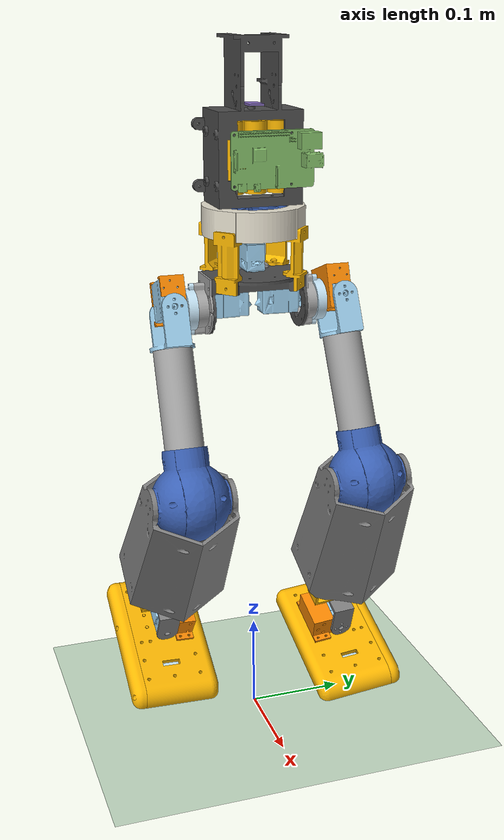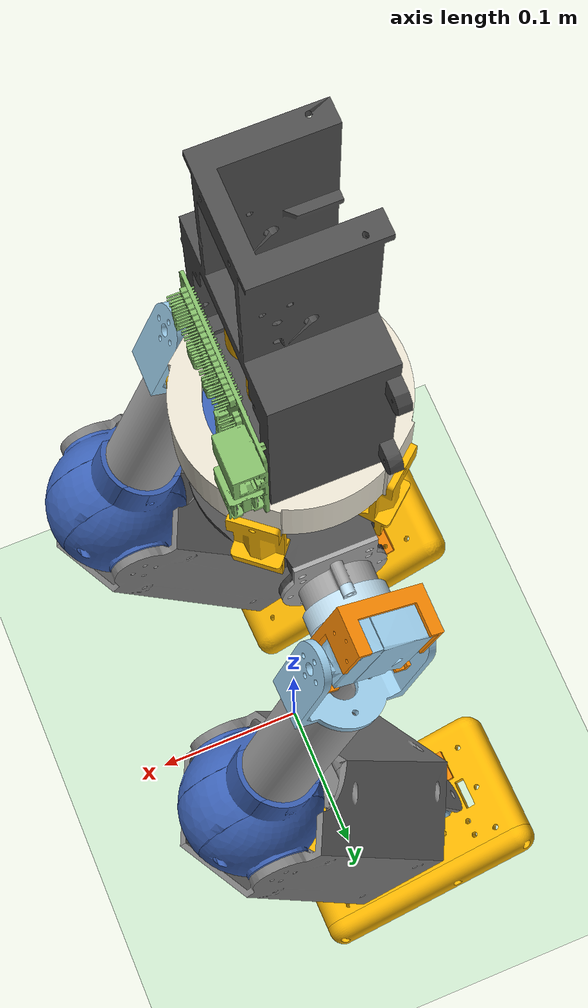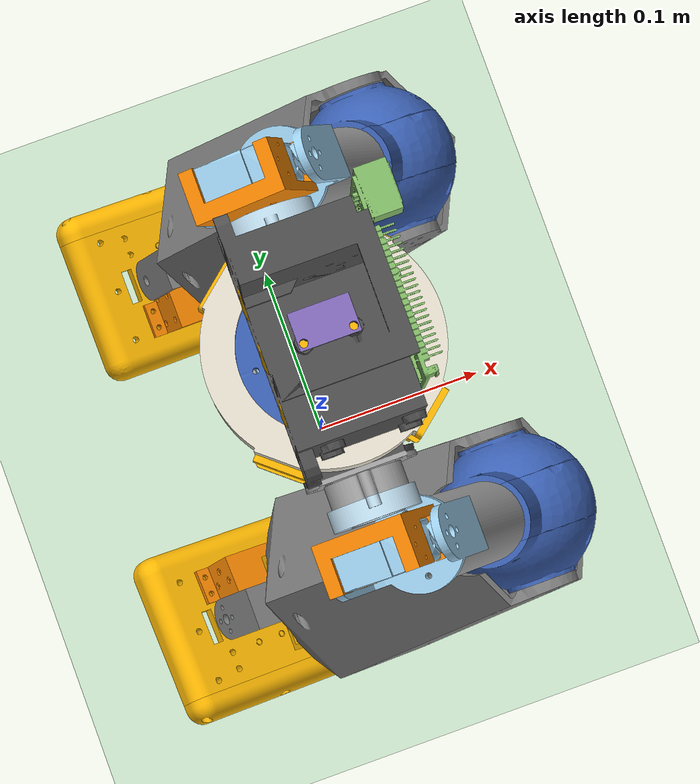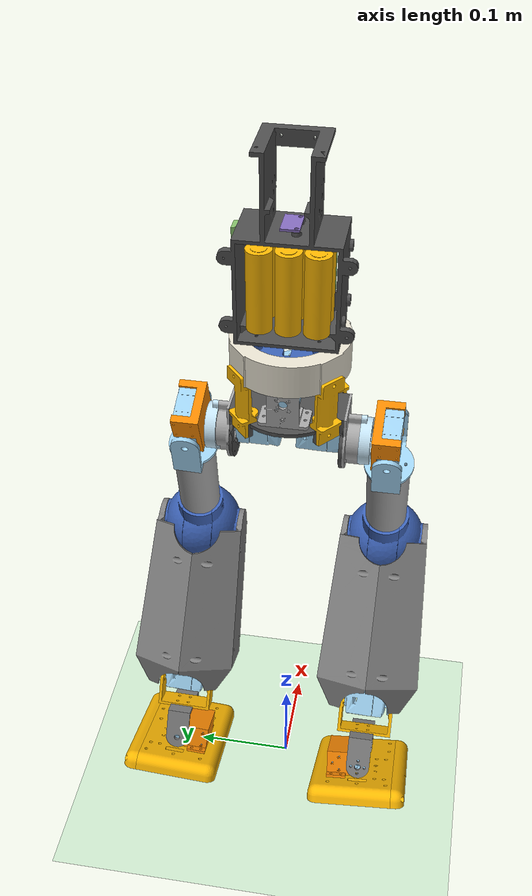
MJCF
<mujoco model="wildrobot">
  <option>
    <flag eulerdamp="disable" />
  </option>
  <include file="../common/scene.xml" />
  <include file="../common/mimic_sites.xml" />
  <compiler angle="radian" meshdir="assets" autolimits="true" />
  <default>
    <default class="wildrobot">
      <joint frictionloss="0.1" armature="0.005" />
      <position kp="50" dampratio="1" />
      <default class="visual">
        <geom type="mesh" contype="0" conaffinity="0" group="2" />
      </default>
      <default class="collision">
        <geom group="3" />
      </default>
    </default>
  </default>
  <sensor>
    <gyro site="chest_mimic" name="chest_gyro" />
    <accelerometer site="chest_mimic" name="chest_accelerometer" />
    <magnetometer site="chest_mimic" name="chest_magnetometer" />
    <velocimeter site="chest_mimic" name="chest_local_linvel" />
    <framequat objtype="site" objname="chest_mimic" name="chest_orientation" />
    <framezaxis objtype="site" objname="chest_mimic" name="chest_upvector" />
    <framexaxis objtype="site" objname="chest_mimic" name="chest_forwardvector" />
    <framelinvel objtype="site" objname="chest_mimic" name="chest_global_linvel" />
    <frameangvel objtype="site" objname="chest_mimic" name="chest_global_angvel" />
  </sensor>
  <default>
    <default class="lobotServo">
      <geom contype="0" conaffinity="0" />
      <joint damping="0.60" frictionloss="0.052" armature="0.028" />
      <position kp="17.8" kv="0.0" forcerange="-3.35 3.35" />
    </default>
    <default class="backlash">
      <joint damping="0.01" frictionloss="0" armature="0.01" limited="true" range="-0.008726646259971648 0.008726646259971648" />
    </default>
  </default>
  <worldbody>
    <body name="waist" pos="0 0 0.5" quat="1 0 0 0" childclass="wildrobot">
      <freejoint name="waist_freejoint" />
      <inertial pos="-0.00184822 -0.000203433 0.00597027" mass="0.439621" fullinertia="0.000998328 0.000698683 0.000703069 -9.31276e-08 1.31642e-05 5.17055e-07" />
      <geom type="mesh" class="visual" pos="-0.0597499 -0.0015488 -0.0272315" quat="0.706405 0.707807 0.000824746 -0.00082437" mesh="htd_45h_1circle" material="htd_45h_1circle_material" />
      <geom type="mesh" class="visual" pos="0.000373533 -0.000522794 0.125179" quat="0.34202 -0.000813125 0.00117541 -0.939692" mesh="waist_trunk_support" material="waist_trunk_support_material" />
      <geom type="mesh" class="visual" pos="-4.69683e-05 -0.000162684 4.02564e-07" quat="0.707106 -0.000240191 0.00140893 -0.707106" mesh="trunk_bottom" material="trunk_bottom_material" />
      <geom type="mesh" class="visual" pos="-0.00625136 -0.0598011 -0.00405253" quat="0.707105 0.00152514 0.00035641 0.707106" mesh="htd_45h_1circle" material="htd_45h_1circle_material" />
      <geom type="mesh" class="visual" pos="-4.69683e-05 -0.000162684 4.02564e-07" quat="0.707106 -0.000240191 0.00140893 -0.707106" mesh="trunk_servo_connect" material="trunk_servo_connect_material" />
      <geom type="mesh" class="visual" pos="-4.69685e-05 -0.000412684 -1.06452e-08" quat="0.707106 0.00140893 0.000240191 0.707106" mesh="hip_cover" material="hip_cover_material" />
      <geom type="mesh" class="visual" pos="0.000244976 -0.000369585 0.125179" quat="0.34202 -0.000813125 0.00117541 -0.939692" mesh="scroll_out" material="scroll_out_material" />
      <geom type="mesh" class="visual" pos="0.000373533 -0.000216376 0.125179" quat="0.939692 0.00037775 0.00137843 -0.342019" mesh="waist_trunk_support" material="waist_trunk_support_material" />
      <geom type="mesh" class="visual" pos="-4.69684e-05 -0.000262684 2.37281e-07" quat="0.707106 0.00140893 0.000240191 0.707106" mesh="hip_trunk_connect" material="hip_trunk_connect_material" />
      <geom type="mesh" class="visual" pos="0.000116418 -0.000522794 0.12518" quat="0.342019 0.00137843 -0.00037775 0.939692" mesh="waist_trunk_support" material="waist_trunk_support_material" />
      <geom type="mesh" class="visual" pos="0.000116419 -0.000216377 0.12518" quat="0.939692 0.00117541 0.000813125 0.34202" mesh="waist_trunk_support" material="waist_trunk_support_material" />
      <geom type="mesh" class="visual" pos="-4.6968e-05 8.73158e-05 8.15774e-07" quat="0.707106 -0.000240191 0.00140893 -0.707106" mesh="hip_cover" material="hip_cover_material" />
      <geom type="mesh" class="visual" pos="0.0595283 0.00131391 -0.0275049" quat="0.000825017 -0.000824099 -0.706638 -0.707574" mesh="htd_45h_1circle" material="htd_45h_1circle_material" />
      <geom type="mesh" class="visual" pos="-4.69681e-05 -6.2684e-05 5.67848e-07" quat="0.707106 -0.000240191 0.00140893 -0.707106" mesh="hip_trunk_connect" material="hip_trunk_connect_material" />
      <site group="3" name="pelvis_mimic" pos="-4.69683e-05 -0.000162684 4.02564e-07" quat="0.999999 0.00082642 0.0011661 4.57714e-07" />
      <body name="chassis" pos="8.52189e-05 -0.000200605 0.0482002" quat="0.000704462 -0.707106 -0.707107 0.000120095">
        <joint axis="0 0 1" name="waist" type="hinge" range="-1.5707977403908642 1.570794913198929" class="lobotServo" />
        <inertial pos="0.00235226 0.00416672 -0.0682563" mass="0.841214" fullinertia="0.00126289 0.00149567 0.000913668 -0.000107674 2.45804e-05 3.30803e-05" />
        <geom type="mesh" class="visual" pos="0.0233089 -0.211191 -0.0331" quat="0.707107 0.707107 4.99782e-07 4.99782e-07" mesh="cell" material="cell_material" />
        <geom type="mesh" class="visual" pos="0.00985853 0.0311486 -0.068" quat="1 2.01641e-16 -1.11022e-16 7.06798e-07" mesh="rp_assemble" material="rp_assemble_material" />
        <geom type="mesh" class="visual" pos="-0.000141454 0.0233586 -0.068" quat="5.37792e-19 -7.06798e-07 1 1.93595e-16" mesh="batterybox" material="batterybox_material" />
        <geom type="mesh" class="visual" pos="0.0951086 -0.000141287 -0.119" quat="7.06798e-07 7.43936e-17 1.11022e-16 -1" mesh="bno085" material="bno085_material" />
        <geom type="mesh" class="visual" pos="-0.000141089 -0.234991 -0.0331" quat="0.707107 0.707107 4.99782e-07 4.99782e-07" mesh="cell" material="cell_material" />
        <geom type="mesh" class="visual" pos="-0.0235911 -0.234991 -0.0331" quat="0.707107 0.707107 4.99782e-07 4.99782e-07" mesh="cell" material="cell_material" />
        <geom type="mesh" class="visual" pos="-0.000141421 -0.000141422 -0.0763796" quat="1.93487e-16 -1 -7.06798e-07 -9.7952e-17" mesh="waist_platform" material="waist_platform_material" />
        <geom type="mesh" class="visual" pos="-0.000141421 -0.000141422 -0.0763796" quat="1.93487e-16 -1 -7.06798e-07 -9.7952e-17" mesh="waist_platform_2" material="waist_platform_2_material" />
        <geom type="mesh" class="visual" pos="0.0233089 -0.234991 -0.0331" quat="0.707107 0.707107 4.99782e-07 4.99782e-07" mesh="cell" material="cell_material" />
        <geom type="mesh" class="visual" pos="-0.0235911 -0.211191 -0.0331" quat="0.707107 0.707107 4.99782e-07 4.99782e-07" mesh="cell" material="cell_material" />
        <geom type="mesh" class="visual" pos="-0.000141123 -0.211191 -0.0331" quat="0.707107 0.707107 4.99782e-07 4.99782e-07" mesh="cell" material="cell_material" />
        <site group="3" name="chest_imu" pos="0.00011984 -0.000141421 -0.119" quat="4.3029e-17 0.707106 0.707107 3.3975e-16" />
        <site group="3" name="chest_mimic" pos="0.000156596 -0.000141421 -0.114" quat="9.63927e-18 -0.707106 -0.707107 -2.23102e-16" />
      </body>
      <body name="left_hip" pos="-0.000172708 0.0534928 -0.0334943" quat="0.000532121 0.00111617 -0.708103 0.706109">
        <joint axis="0 0 1" name="left_waist_hip" type="hinge" range="-1.4057639174040384 1.2122299605874558" class="lobotServo" />
        <inertial pos="0.000421698 -0.00943008 -0.0331054" mass="0.0849728" fullinertia="1.96738e-05 1.96137e-05 2.44282e-05 5.43172e-07 -2.53773e-07 -1.67658e-06" />
        <geom type="mesh" class="visual" pos="0.0116942 -0.0314888 0.0566" quat="0.581148 0.402824 0.581148 -0.402824" mesh="hip_servo_hook_left" material="hip_servo_hook_left_material" />
        <geom type="mesh" class="visual" pos="0.0259011 0.00289219 0.0231393" quat="0.12598 0.695794 0.12598 -0.695794" mesh="htd_45h_1circle" material="htd_45h_1circle_material" />
        <site group="3" name="left_hip_mimic" pos="0.000436 5.66837e-05 -0.0364505" quat="0.123665 -0.123665 0.696209 -0.696209" />
        <body name="upper_leg" pos="-0.0251308 -0.00959592 -0.0365475" quat="0.695987 -0.126448 0.695412 0.126552">
          <joint axis="0 0 1" name="left_hip" type="hinge" range="-0.9892687304855692 0.40699467110989435" class="lobotServo" />
          <inertial pos="0.00818352 0.159105 0.0267034" mass="0.236565" fullinertia="0.000985322 0.000127633 0.000979617 -3.99772e-05 7.18768e-08 1.07297e-06" />
          <geom type="mesh" class="visual" pos="-0.0948406 0.00550016 0.0267" quat="0.70681 0.70681 -0.0204781 -0.0204781" mesh="up_leg_servo_connect" material="up_leg_servo_connect_material" />
          <geom type="mesh" class="visual" pos="0.0100944 0.17406 0.1872" quat="0.48531 0.51427 0.48531 -0.51427" mesh="icm45686" material="icm45686_material" />
          <geom type="mesh" class="visual" pos="-0.0946641 0.00508925 0.0266985" quat="0.706808 0.706812 -0.020481 -0.0204752" mesh="knee_ball_left" material="knee_ball_left_material" />
          <geom type="mesh" class="visual" pos="-0.0948522 0.0053005 0.0267" quat="0.70681 0.70681 -0.0204781 -0.0204781" mesh="knee_ball_mid" material="knee_ball_mid_material" />
          <geom type="mesh" class="visual" pos="-0.0948406 0.00550016 0.0267" quat="0.70681 0.70681 -0.0204781 -0.0204781" mesh="up_leg" material="up_leg_material" />
          <geom type="mesh" class="visual" pos="0.0368187 0.196827 -0.0329432" quat="0.70653 -0.0199567 -0.70712 -0.0199429" mesh="htd_45h_1circle" material="htd_45h_1circle_material" />
          <geom type="mesh" class="visual" pos="-0.0950635 0.00511245 0.0268019" quat="0.707069 0.706552 -0.0204937 -0.0204624" mesh="knee_ball_right" material="knee_ball_right_material" />
          <site group="3" name="left_knee_imu" pos="0.0100365 0.173061 0.0264651" quat="0.48531 0.51427 0.48531 -0.51427" />
          <site group="3" name="left_knee_mimic" pos="0.0111365 0.19203 0.0267" quat="0.48531 0.51427 0.48531 -0.51427" />
          <body name="lower_leg" pos="-0.0156685 0.193584 0.0267" quat="0.276907 -0.633507 0.31411 -0.650635">
            <joint axis="0 0 1" name="left_knee" type="hinge" range="-0.862673177600354 0.7081231491945426" class="lobotServo" />
            <inertial pos="-0.000521354 -0.101401 0.0270617" mass="0.380663" fullinertia="0.00177714 0.000669988 0.00168908 1.88914e-05 3.0835e-08 -3.5834e-05" />
            <geom type="mesh" class="visual" pos="-1.97065e-15 0.192752 -0.0677579" quat="0.5 -0.5 -0.5 -0.5" mesh="low_leg_right" material="low_leg_right_material" />
            <geom type="mesh" class="visual" pos="-6.10623e-16 0.192752 -0.0677579" quat="0.5 -0.5 -0.5 -0.5" mesh="low_leg_left" material="low_leg_left_material" />
            <geom type="mesh" class="visual" pos="0.0596393 -0.173769 0.0526109" quat="1.31006e-14 -1.4616e-15 -1 0.000164358" mesh="htd_45h_1circle" material="htd_45h_1circle_material" />
            <body name="left_ankle" pos="-4.74705e-05 -0.179984 0.000442075" quat="0.998721 0.000561418 0.000442155 -0.05055">
              <joint axis="0 0 1" name="left_ankle" type="hinge" range="-0.4224551643931683 0.6247423868034293" class="lobotServo" />
              <inertial pos="-0.000778386 -0.0291765 0.0259275" mass="0.0230191" fullinertia="1.34186e-05 1.32703e-05 1.41853e-05 -1.80568e-07 1.56329e-08 2.24395e-07" />
              <geom type="mesh" class="visual" pos="5.55112e-17 -0.0722 0.0268" quat="0.5 -0.5 -0.5 -0.5" mesh="servo_bracket_btm" material="servo_bracket_btm_material" />
              <geom type="mesh" class="visual" pos="-2.77556e-17 -0.0732 0.0268" quat="0.5 -0.5 -0.5 -0.5" mesh="servo_bracket_top" material="servo_bracket_top_material" />
              <body name="left_foot" pos="-0.0268 -0.0594 0.0268" quat="0.509468 0.490349 0.509468 0.490349">
                <joint axis="0 0 1" name="left_foot" type="hinge" range="-0.3108265245577723 0.38730517623995947" class="lobotServo" />
                <inertial pos="-0.0183724 -0.00183883 0.00908575" mass="0.413618" fullinertia="0.00096407 0.00073874 0.0003209 1.74031e-05 -2.95872e-05 1.47775e-05" />
                <geom type="mesh" class="visual" pos="-0.0128254 0.000185294 0.0255108" quat="0.499502 0.500498 0.499915 0.500085" mesh="btm_servo_support" material="btm_servo_support_material" />
                <geom type="mesh" class="visual" pos="-0.0596436 -0.0062757 0.0510108" quat="0.00074741 -1 3.08837e-07 0.00041321" mesh="htd_45h_1circle" material="htd_45h_1circle_material" />
                <geom type="mesh" class="visual" pos="-0.0125253 0.0011852 0.0255946" quat="0.499502 0.500498 0.499915 0.500085" mesh="foot_btm_back" material="foot_btm_back_material" />
                <geom type="mesh" class="collision" pos="-0.0125253 0.0011852 0.0255946" quat="0.499502 0.500498 0.499915 0.500085" mesh="foot_btm_back" material="foot_btm_back_material" name="left_foot_btm_back" />
                <geom type="mesh" class="visual" pos="-0.0128254 0.000185294 0.0255108" quat="0.499502 0.500498 0.499915 0.500085" mesh="foot_side" material="foot_side_material" />
                <geom type="mesh" class="visual" pos="-0.0128254 0.000185294 0.0255108" quat="0.499502 0.500498 0.499915 0.500085" mesh="foot_main" material="foot_main_material" />
                <geom type="mesh" class="visual" pos="-0.0125255 0.00118539 0.0254289" quat="0.499502 0.500498 0.499915 0.500085" mesh="foot_btm_front" material="foot_btm_front_material" />
                <geom type="mesh" class="collision" pos="-0.0125255 0.00118539 0.0254289" quat="0.499502 0.500498 0.499915 0.500085" mesh="foot_btm_front" material="foot_btm_front_material" name="left_foot_btm_front" />
                <site group="3" name="left_foot_mimic" pos="-0.0294391 -0.00926314 0.00899012" quat="0.706814 0.00041245 0.707399 0.000412109" />
              </body>
            </body>
          </body>
        </body>
      </body>
      <body name="right_hip" pos="-7.78758e-05 -0.0537071 -0.0336717" quat="0.707279 -0.706934 0.000531499 0.00111747">
        <joint axis="0 0 1" name="right_waist_hip" type="hinge" range="-1.1818030968488529 1.4361907811426413" class="lobotServo" />
        <inertial pos="-0.000884833 -0.00934056 -0.0331404" mass="0.0849728" fullinertia="1.96551e-05 1.96681e-05 2.44237e-05 -5.50614e-07 1.68918e-07 -1.67603e-06" />
        <geom type="mesh" class="visual" pos="-0.0259862 0.00375467 -0.0961393" quat="0.13655 0.693797 -0.13655 0.693797" mesh="htd_45h_1circle" material="htd_45h_1circle_material" />
        <geom type="mesh" class="visual" pos="-0.0128318 -0.0310426 0.0566" quat="0.587209 0.393936 -0.587209 0.393936" mesh="hip_servo_hook_right" material="hip_servo_hook_right_material" />
        <site group="3" name="right_hip_mimic" pos="-0.000619132 0.000145773 -0.0365495" quat="0.694247 0.694247 -0.134242 -0.134242" />
        <body name="upper_leg_2" pos="0.0246422 -0.0102802 -0.0364525" quat="0.693408 -0.137126 -0.693981 -0.137012">
          <joint axis="0 0 1" name="right_hip" type="hinge" range="-0.34906585039886234 1.0471975511966012" class="lobotServo" />
          <inertial pos="-0.00104181 0.159312 0.0267034" mass="0.236565" fullinertia="0.000987068 0.000125887 0.000979617 9.86461e-06 9.63535e-09 1.07533e-06" />
          <geom type="mesh" class="visual" pos="-0.095 2.42861e-17 0.0267" quat="0.707107 0.707107 -6.66134e-16 6.12613e-17" mesh="up_leg_servo_connect" material="up_leg_servo_connect_material" />
          <geom type="mesh" class="visual" pos="1.52656e-16 0.174352 0.1872" quat="0.5 0.5 0.5 -0.5" mesh="icm45686" material="icm45686_material" />
          <geom type="mesh" class="visual" pos="-0.0948 -0.0004 0.0266985" quat="0.707105 0.707109 -2.84803e-06 2.84595e-06" mesh="knee_ball_left" material="knee_ball_left_material" />
          <geom type="mesh" class="visual" pos="-0.095 -0.0002 0.0267" quat="0.707107 0.707107 -7.77156e-16 6.55782e-17" mesh="knee_ball_mid" material="knee_ball_mid_material" />
          <geom type="mesh" class="visual" pos="-0.095 2.77556e-17 0.0267" quat="0.707107 0.707107 -7.77156e-16 7.62971e-17" mesh="up_leg" material="up_leg_material" />
          <geom type="mesh" class="visual" pos="0.0253613 0.198628 -0.0329432" quat="0.706811 0.000530114 -0.707402 0.000526879" mesh="htd_45h_1circle" material="htd_45h_1circle_material" />
          <geom type="mesh" class="visual" pos="-0.0952 -0.000399963 0.0268019" quat="0.707365 0.706849 -2.31378e-05 2.31379e-05" mesh="knee_ball_right" material="knee_ball_right_material" />
          <site group="3" name="right_knee_imu" pos="4.16334e-17 0.173352 0.0264651" quat="0.5 0.5 0.5 -0.5" />
          <site group="3" name="right_knee_mimic" pos="5.41234e-16 0.192352 0.0267" quat="0.5 0.5 0.5 -0.5" />
          <body name="lower_leg_2" pos="-0.02685 0.192352 0.0267" quat="0.345975 -0.616684 0.345972 -0.616689">
            <joint axis="0 0 1" name="right_knee" type="hinge" range="-1.0225247445278098 0.5482715822670867" class="lobotServo" />
            <inertial pos="-0.000521354 -0.101401 0.0270617" mass="0.380663" fullinertia="0.00177714 0.000669988 0.00168908 1.88914e-05 3.0835e-08 -3.5834e-05" />
            <geom type="mesh" class="visual" pos="-2.19269e-15 0.192752 -0.0677579" quat="0.5 -0.5 -0.5 -0.5" mesh="low_leg_right" material="low_leg_right_material" />
            <geom type="mesh" class="visual" pos="-1.94289e-16 0.192752 -0.0677579" quat="0.5 -0.5 -0.5 -0.5" mesh="low_leg_left" material="low_leg_left_material" />
            <geom type="mesh" class="visual" pos="0.0596393 -0.173769 0.0526109" quat="1.06581e-14 9.03675e-18 -1 0.000164358" mesh="htd_45h_1circle" material="htd_45h_1circle_material" />
            <body name="right_ankle" pos="-4.74705e-05 -0.179984 0.000442075" quat="2.40923e-07 -0.00041321 0.000583051 -1">
              <joint axis="0 0 1" name="right_ankle" type="hinge" range="-0.4286538344687406 0.618543716727857" class="lobotServo" />
              <inertial pos="0.00199112 0.0291189 0.0259275" mass="0.0230191" fullinertia="1.34514e-05 1.32375e-05 1.41853e-05 1.63321e-07 -5.71065e-09 -2.24867e-07" />
              <geom type="mesh" class="visual" pos="0.00684473 0.0718748 0.0268" quat="0.475709 0.523164 0.475709 -0.523164" mesh="servo_bracket_btm" material="servo_bracket_btm_material" />
              <geom type="mesh" class="visual" pos="0.00693953 0.0728703 0.0268" quat="0.523164 0.475709 -0.523164 0.475709" mesh="servo_bracket_top" material="servo_bracket_top_material" />
              <body name="right_foot" pos="-0.021048 0.0616732 0.0268" quat="0.493379 0.457479 -0.539178 -0.506534">
                <joint axis="0 0 1" name="right_foot" type="hinge" range="-0.41770057426382823 0.28043112653390356" class="lobotServo" />
                <inertial pos="-0.0182605 0.00187575 -0.0419443" mass="0.413618" fullinertia="0.000978456 0.000752203 0.000319832 -1.71895e-05 -3.90028e-05 -1.62365e-05" />
                <geom type="mesh" class="visual" pos="-0.0128256 0.159815 -0.0265243" quat="0.499915 0.500085 0.499502 0.500498" mesh="foot_main_right" material="foot_main_right_material" />
                <geom type="mesh" class="visual" pos="-0.0125255 -0.00118539 -0.0266289" quat="0.499915 0.500085 0.499502 0.500498" mesh="foot_btm_front" material="foot_btm_front_material" />
                <geom type="mesh" class="collision" pos="-0.0125255 -0.00118539 -0.0266289" quat="0.499915 0.500085 0.499502 0.500498" mesh="foot_btm_front" material="foot_btm_front_material" name="right_foot_btm_front" />
                <geom type="mesh" class="visual" pos="-0.0128256 0.159815 -0.0265243" quat="0.499915 0.500085 0.499502 0.500498" mesh="foot_side_right" material="foot_side_right_material" />
                <geom type="mesh" class="visual" pos="-0.0128254 -0.000185294 -0.0267108" quat="0.500498 -0.499502 0.500085 -0.499915" mesh="btm_servo_support" material="btm_servo_support_material" />
                <geom type="mesh" class="visual" pos="-0.0105255 -0.00118539 -0.0266273" quat="0.499915 0.500085 0.499502 0.500498" mesh="foot_btm_back" material="foot_btm_back_material" />
                <geom type="mesh" class="collision" pos="-0.0105255 -0.00118539 -0.0266273" quat="0.499915 0.500085 0.499502 0.500498" mesh="foot_btm_back" material="foot_btm_back_material" name="right_foot_btm_back" />
                <geom type="mesh" class="visual" pos="-0.0596436 0.0062757 -0.0522108" quat="1 0.00074741 -0.00041321 3.08837e-07" mesh="htd_45h_1circle" material="htd_45h_1circle_material" />
                <site group="3" name="right_foot_mimic" pos="-0.0294117 0.00930168 -0.0432369" quat="0.707399 0.000412109 0.706814 0.00041245" />
              </body>
            </body>
          </body>
        </body>
      </body>
    </body>
  </worldbody>
  <asset>
    <mesh file="foot_main.stl" />
    <mesh file="foot_btm_front.stl" />
    <mesh file="batterybox.stl" />
    <mesh file="knee_ball_left.stl" />
    <mesh file="knee_ball_mid.stl" />
    <mesh file="hip_trunk_connect.stl" />
    <mesh file="servo_bracket_top.stl" />
    <mesh file="waist_trunk_support.stl" />
    <mesh file="low_leg_right.stl" />
    <mesh file="waist_platform.stl" />
    <mesh file="scroll_out.stl" />
    <mesh file="foot_side.stl" />
    <mesh file="knee_ball_right.stl" />
    <mesh file="trunk_bottom.stl" />
    <mesh file="hip_cover.stl" />
    <mesh file="servo_bracket_btm.stl" />
    <mesh file="btm_servo_support.stl" />
    <mesh file="cell.stl" />
    <mesh file="icm45686.stl" />
    <mesh file="hip_servo_hook_right.stl" />
    <mesh file="foot_main_right.stl" />
    <mesh file="foot_side_right.stl" />
    <mesh file="trunk_servo_connect.stl" />
    <mesh file="waist_platform_2.stl" />
    <mesh file="foot_btm_back.stl" />
    <mesh file="bno085.stl" />
    <mesh file="hip_servo_hook_left.stl" />
    <mesh file="htd_45h_1circle.stl" />
    <mesh file="up_leg_servo_connect.stl" />
    <mesh file="low_leg_left.stl" />
    <mesh file="rp_assemble.stl" />
    <mesh file="up_leg.stl" />
    <material name="htd_45h_1circle_material" rgba="0.615686 0.811765 0.929412 1" />
    <material name="waist_trunk_support_material" rgba="0.980392 0.713725 0.00392157 1" />
    <material name="trunk_bottom_material" rgba="0.301961 0.301961 0.301961 1" />
    <material name="trunk_servo_connect_material" rgba="0.647059 0.647059 0.647059 1" />
    <material name="hip_cover_material" rgba="0.768627 0.886275 0.952941 1" />
    <material name="scroll_out_material" rgba="0.901961 0.878431 0.811765 1" />
    <material name="hip_trunk_connect_material" rgba="0.647059 0.647059 0.647059 1" />
    <material name="cell_material" rgba="0.980392 0.713725 0.00392157 1" />
    <material name="rp_assemble_material" rgba="0.513725 0.737255 0.407843 1" />
    <material name="batterybox_material" rgba="0.301961 0.301961 0.301961 1" />
    <material name="bno085_material" rgba="0.513725 0.415686 0.733333 1" />
    <material name="waist_platform_material" rgba="0.231373 0.380392 0.705882 1" />
    <material name="waist_platform_2_material" rgba="0.231373 0.380392 0.705882 1" />
    <material name="hip_servo_hook_left_material" rgba="0.972549 0.529412 0.00392157 1" />
    <material name="up_leg_servo_connect_material" rgba="0.615686 0.811765 0.929412 1" />
    <material name="icm45686_material" rgba="0.301961 0.301961 0.301961 1" />
    <material name="knee_ball_left_material" rgba="0.231373 0.380392 0.705882 1" />
    <material name="knee_ball_mid_material" rgba="0.231373 0.380392 0.705882 1" />
    <material name="up_leg_material" rgba="0.647059 0.647059 0.647059 1" />
    <material name="knee_ball_right_material" rgba="0.231373 0.380392 0.705882 1" />
    <material name="low_leg_right_material" rgba="0.498039 0.498039 0.498039 1" />
    <material name="low_leg_left_material" rgba="0.498039 0.498039 0.498039 1" />
    <material name="servo_bracket_btm_material" rgba="0.498039 0.498039 0.498039 1" />
    <material name="servo_bracket_top_material" rgba="0.980392 0.713725 0.00392157 1" />
    <material name="btm_servo_support_material" rgba="0.972549 0.529412 0.00392157 1" />
    <material name="foot_btm_back_material" rgba="0.768627 0.886275 0.952941 1" />
    <material name="foot_side_material" rgba="0.980392 0.713725 0.00392157 1" />
    <material name="foot_main_material" rgba="0.980392 0.713725 0.00392157 1" />
    <material name="foot_btm_front_material" rgba="0.231373 0.380392 0.705882 1" />
    <material name="hip_servo_hook_right_material" rgba="0.972549 0.529412 0.00392157 1" />
    <material name="foot_main_right_material" rgba="0.980392 0.713725 0.00392157 1" />
    <material name="foot_side_right_material" rgba="0.980392 0.713725 0.00392157 1" />
  </asset>
  <actuator>
    <position class="lobotServo" name="waist" joint="waist" inheritrange="1" />
    <position class="lobotServo" name="left_waist_hip" joint="left_waist_hip" inheritrange="1" />
    <position class="lobotServo" name="left_hip" joint="left_hip" inheritrange="1" />
    <position class="lobotServo" name="left_knee" joint="left_knee" inheritrange="1" />
    <position class="lobotServo" name="left_ankle" joint="left_ankle" inheritrange="1" />
    <position class="lobotServo" name="left_foot" joint="left_foot" inheritrange="1" />
    <position class="lobotServo" name="right_waist_hip" joint="right_waist_hip" inheritrange="1" />
    <position class="lobotServo" name="right_hip" joint="right_hip" inheritrange="1" />
    <position class="lobotServo" name="right_knee" joint="right_knee" inheritrange="1" />
    <position class="lobotServo" name="right_ankle" joint="right_ankle" inheritrange="1" />
    <position class="lobotServo" name="right_foot" joint="right_foot" inheritrange="1" />
  </actuator>
  <equality />
</mujoco>

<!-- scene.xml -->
git s<mujoco model="scene">

  <visual>
    <headlight diffuse="0.6 0.6 0.6" ambient="0.3 0.3 0.3" specular="0 0 0"/>
    <rgba haze="0.15 0.25 0.35 1"/>
    <global azimuth="-130" elevation="-20"/>
  </visual>

   <asset>
       <texture builtin="gradient" height="100" rgb1=".4 .5 .6" rgb2="0 0 0" type="skybox" width="100"/>
       <texture name="texplane" type="2d" builtin="checker" rgb1=".2 .3 .4" rgb2=".1 0.15 0.2" width="100" height="100"/>
       <material name="MatPlane" reflectance="0.5" texture="texplane" texrepeat="1 1" texuniform="true"/>
   </asset>

    <worldbody>
        <geom name="floor" friction="1 .1 .1" pos="0 0 0" size="0 0 0.125" type="plane" material="MatPlane" condim="3" conaffinity="1" contype="1" group="2" rgba="0.8 0.9 0.8 1"/>
        <light cutoff="1000" diffuse="1 1 1" dir="-0 0 -1.3" directional="true" exponent="1" pos="0 0 1.3" specular=".1 .1 .1" castshadow="false"/>
    </worldbody>
</mujoco>

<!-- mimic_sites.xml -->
<mujoco model="mimic_sites">
    <default>
    <default class="mimic">
        <site group="1" type="box" size="0.075 0.05 0.025" rgba="1.0 0.0 0.0 0.5"/>
    </default>
    </default>
</mujoco>
